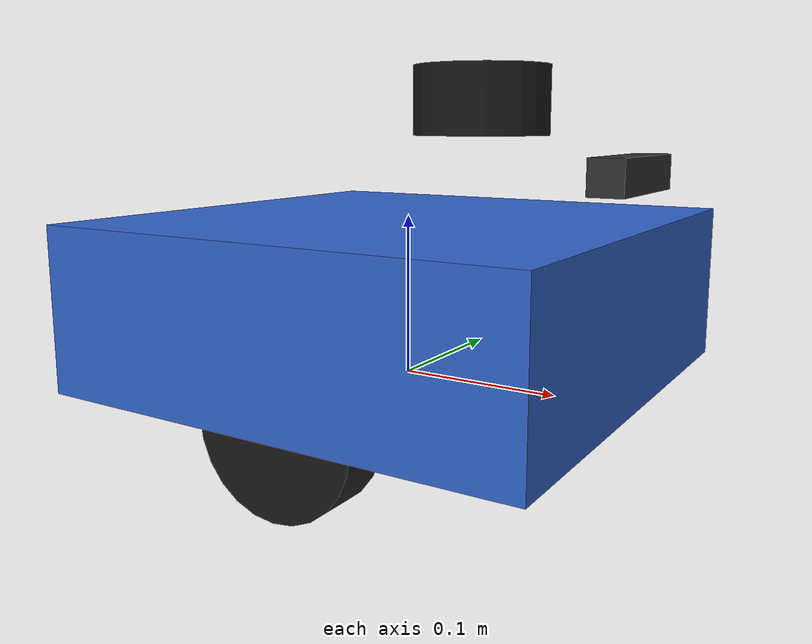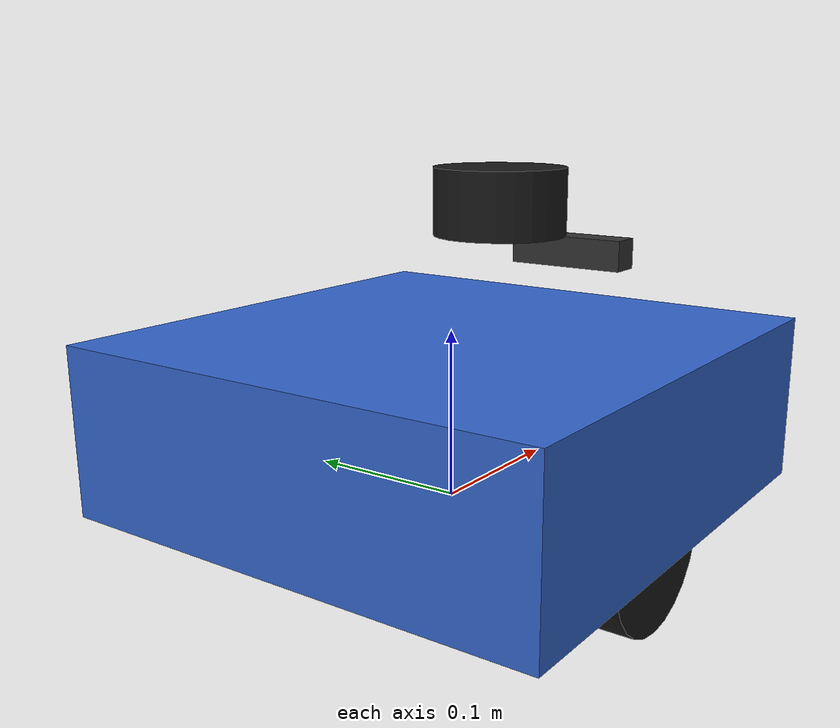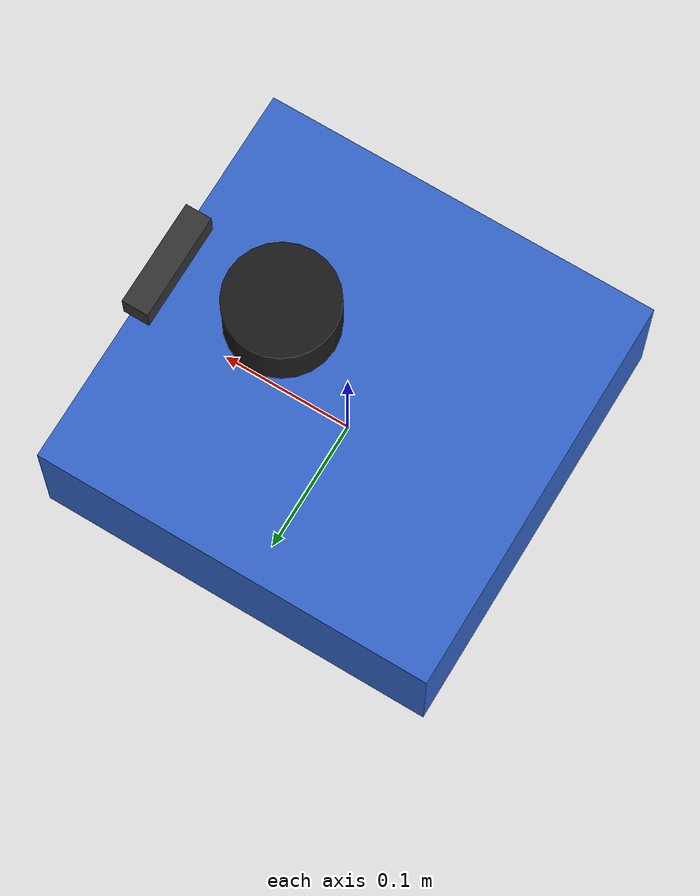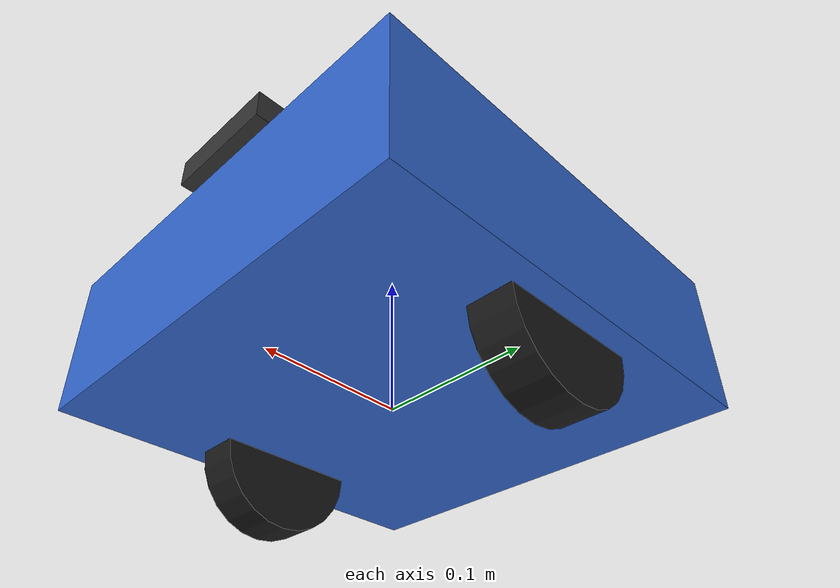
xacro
<?xml version="1.0"?>
<robot xmlns:xacro="http://www.ros.org/wiki/xacro" name="domestic_assistant">

  <xacro:property name="base_width" value="0.30"/>
  <xacro:property name="base_length" value="0.30"/>
  <xacro:property name="base_height" value="0.10"/>
  <xacro:property name="wheel_radius" value="0.05"/>
  <xacro:property name="wheel_width" value="0.03"/>
  <xacro:property name="wheel_y_offset" value="0.12"/>
  <xacro:property name="caster_radius" value="0.025"/>

  <xacro:include filename="$(find robot_description)/urdf/wheels.xacro"/>
  <xacro:include filename="$(find robot_description)/urdf/sensors.xacro"/>

  <!-- Base footprint (ground projection) -->
  <link name="base_footprint"/>

  <joint name="base_footprint_joint" type="fixed">
    <parent link="base_footprint"/>
    <child link="base_link"/>
    <origin xyz="0 0 ${wheel_radius}" rpy="0 0 0"/>
  </joint>

  <link name="base_link">
    <visual>
      <geometry>
        <box size="${base_length} ${base_width} ${base_height}"/>
      </geometry>
      <material name="blue">
        <color rgba="0.2 0.4 0.8 1.0"/>
      </material>
    </visual>
    <collision>
      <geometry>
        <box size="${base_length} ${base_width} ${base_height}"/>
      </geometry>
    </collision>
    <inertial>
      <mass value="5.0"/>
      <origin xyz="0 0 0"/>
      <inertia ixx="0.05" ixy="0" ixz="0" iyy="0.05" iyz="0" izz="0.05"/>
    </inertial>
  </link>

  <xacro:wheel prefix="left" y_offset="${wheel_y_offset}"/>
  <xacro:wheel prefix="right" y_offset="${-wheel_y_offset}"/>

  <!-- Front caster -->
  <link name="front_caster_link">
    <visual>
      <geometry>
        <sphere radius="${caster_radius}"/>
      </geometry>
      <material name="grey">
        <color rgba="0.5 0.5 0.5 1"/>
      </material>
    </visual>
    <collision>
      <geometry>
        <sphere radius="${caster_radius}"/>
      </geometry>
    </collision>
    <inertial>
      <mass value="0.1"/>
      <inertia ixx="0.0001" ixy="0" ixz="0" iyy="0.0001" iyz="0" izz="0.0001"/>
    </inertial>
  </link>

  <joint name="front_caster_joint" type="fixed">
    <parent link="base_link"/>
    <child link="front_caster_link"/>
    <origin xyz="0.10 0 ${-base_height/2 + caster_radius}" rpy="0 0 0"/>
  </joint>

  <xacro:lidar parent="base_link"/>
  <xacro:camera parent="base_link"/>
  <xacro:imu parent="base_link"/>

  <!-- Gazebo Fortress (gz-sim) plugins -->
  <gazebo reference="base_link">
    <material>Gazebo/Blue</material>
  </gazebo>

  <gazebo>
    <plugin filename="gz-sim-diff-drive-system" name="gz::sim::systems::DiffDrive">
      <left_joint>left_wheel_joint</left_joint>
      <right_joint>right_wheel_joint</right_joint>
      <wheel_separation>0.24</wheel_separation>
      <wheel_radius>${wheel_radius}</wheel_radius>
      <odom_publish_frequency>30</odom_publish_frequency>
      <topic>cmd_vel</topic>
      <odom_topic>odom</odom_topic>
      <frame_id>odom</frame_id>
      <child_frame_id>base_footprint</child_frame_id>
    </plugin>
  </gazebo>

</robot>

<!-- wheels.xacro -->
<robot xmlns:xacro="http://www.ros.org/wiki/xacro">

  <xacro:macro name="wheel" params="prefix y_offset">
    <link name="${prefix}_wheel_link">
      <visual>
        <geometry>
          <cylinder length="${wheel_width}" radius="${wheel_radius}"/>
        </geometry>
        <origin xyz="0 0 0" rpy="1.5708 0 0"/>
        <material name="black">
          <color rgba="0.1 0.1 0.1 1"/>
        </material>
      </visual>
      <collision>
        <geometry>
          <cylinder length="${wheel_width}" radius="${wheel_radius}"/>
        </geometry>
        <origin xyz="0 0 0" rpy="1.5708 0 0"/>
      </collision>
      <inertial>
        <mass value="0.5"/>
        <inertia ixx="0.001" ixy="0" ixz="0" iyy="0.001" iyz="0" izz="0.001"/>
      </inertial>
    </link>

    <joint name="${prefix}_wheel_joint" type="continuous">
      <parent link="base_link"/>
      <child link="${prefix}_wheel_link"/>
      <origin xyz="0 ${y_offset} ${-base_height/2}" rpy="0 0 0"/>
      <axis xyz="0 1 0"/>
    </joint>

    <gazebo reference="${prefix}_wheel_link">
      <mu1>1.0</mu1>
      <mu2>1.0</mu2>
      <material>Gazebo/Black</material>
    </gazebo>
  </xacro:macro>

</robot>

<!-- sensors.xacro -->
<robot xmlns:xacro="http://www.ros.org/wiki/xacro">

  <!-- LiDAR Sensor Macro -->
  <xacro:macro name="lidar" params="parent">
    <joint name="laser_joint" type="fixed">
      <parent link="${parent}"/>
      <child link="base_laser_link"/>
      <origin xyz="0.05 0 0.12" rpy="0 0 0"/>
    </joint>

    <link name="base_laser_link">
      <visual>
        <geometry>
          <cylinder radius="0.04" length="0.04"/>
        </geometry>
        <material name="black">
          <color rgba="0.1 0.1 0.1 1.0"/>
        </material>
      </visual>
      <collision>
        <geometry>
          <cylinder radius="0.04" length="0.04"/>
        </geometry>
      </collision>
      <inertial>
        <mass value="0.12"/>
        <inertia ixx="0.0001" ixy="0" ixz="0" iyy="0.0001" iyz="0" izz="0.0001"/>
      </inertial>
    </link>

    <gazebo reference="base_laser_link">
      <sensor name="gpu_lidar" type="gpu_lidar">
        <update_rate>10.0</update_rate>
        <topic>scan</topic>
        <gz_frame_id>base_laser_link</gz_frame_id>
        <ray>
          <scan>
            <horizontal>
              <samples>360</samples>
              <resolution>1.0</resolution>
              <min_angle>-3.14159</min_angle>
              <max_angle>3.14159</max_angle>
            </horizontal>
          </scan>
          <range>
            <min>0.15</min>
            <max>12.0</max>
            <resolution>0.01</resolution>
          </range>
          <noise>
            <type>gaussian</type>
            <mean>0.0</mean>
            <stddev>0.01</stddev>
          </noise>
        </ray>
        <always_on>true</always_on>
        <visualize>true</visualize>
      </sensor>
    </gazebo>
  </xacro:macro>

  <!-- Camera Sensor Macro -->
  <xacro:macro name="camera" params="parent">
    <joint name="camera_joint" type="fixed">
      <parent link="${parent}"/>
      <child link="camera_link"/>
      <origin xyz="0.14 0 0.08" rpy="0 0 0"/>
    </joint>

    <link name="camera_link">
      <visual>
        <geometry>
          <box size="0.02 0.08 0.02"/>
        </geometry>
        <material name="dark_grey">
          <color rgba="0.2 0.2 0.2 1.0"/>
        </material>
      </visual>
      <collision>
        <geometry>
          <box size="0.02 0.08 0.02"/>
        </geometry>
      </collision>
      <inertial>
        <mass value="0.05"/>
        <inertia ixx="0.00001" ixy="0" ixz="0" iyy="0.00001" iyz="0" izz="0.00001"/>
      </inertial>
    </link>

    <!-- Camera optical frame for OpenCV / ROS convention -->
    <joint name="camera_optical_joint" type="fixed">
      <parent link="camera_link"/>
      <child link="camera_link_optical"/>
      <origin xyz="0 0 0" rpy="-1.5707963 0 -1.5707963"/>
    </joint>
    <link name="camera_link_optical"/>

    <gazebo reference="camera_link">
      <sensor name="camera" type="camera">
        <update_rate>30.0</update_rate>
        <topic>camera/image_raw</topic>
        <gz_frame_id>camera_link_optical</gz_frame_id>
        <camera name="front_camera">
          <horizontal_fov>1.089</horizontal_fov>
          <image>
            <width>640</width>
            <height>480</height>
            <format>R8G8B8</format>
          </image>
          <clip>
            <near>0.05</near>
            <far>10.0</far>
          </clip>
        </camera>
        <always_on>true</always_on>
        <visualize>true</visualize>
      </sensor>
    </gazebo>
  </xacro:macro>

  <!-- IMU Sensor Macro -->
  <xacro:macro name="imu" params="parent">
    <joint name="imu_joint" type="fixed">
      <parent link="${parent}"/>
      <child link="imu_link"/>
      <origin xyz="0 0 0.05" rpy="0 0 0"/>
    </joint>

    <link name="imu_link">
      <inertial>
        <mass value="0.01"/>
        <inertia ixx="0.000001" ixy="0" ixz="0" iyy="0.000001" iyz="0" izz="0.000001"/>
      </inertial>
    </link>

    <gazebo reference="imu_link">
      <sensor name="imu" type="imu">
        <update_rate>100.0</update_rate>
        <topic>imu/data</topic>
        <gz_frame_id>imu_link</gz_frame_id>
        <always_on>true</always_on>
      </sensor>
    </gazebo>
  </xacro:macro>

</robot>
